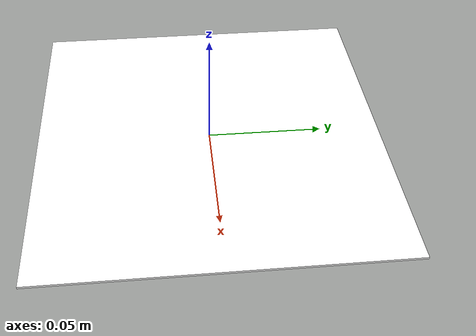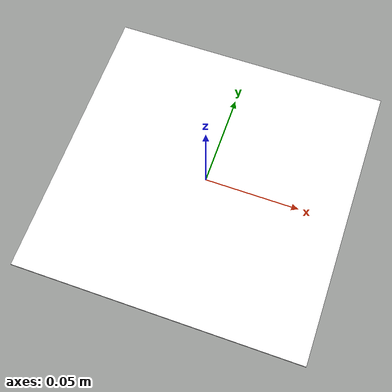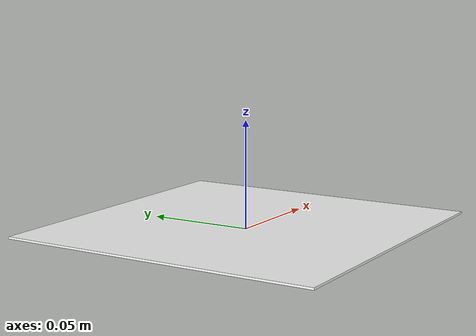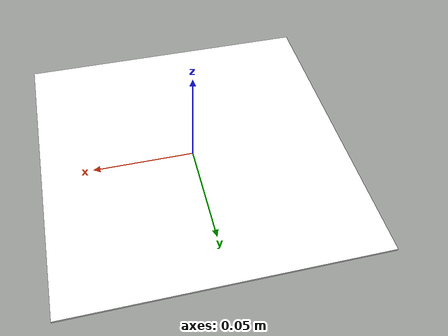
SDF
<?xml version="1.0" encoding="UTF-8"?>
<sdf version="1.9">
  <model name="arucotag">
    <static>true</static>

    <link name="base">
      <pose>0 0 0.002 0 0 0</pose> <visual name="tag_visual">
        <geometry>
          <box>
            <size>0.15 0.15 0.001</size> </box>
        </geometry>
        <material>
          <ambient>1 1 1 1</ambient>
          <diffuse>1 1 1 1</diffuse>
          <pbr>
            <metal>
              <albedo_map>model://marker/ar_tag_0.png</albedo_map>
            </metal>
          </pbr>
        </material>
      </visual>
    </link>
  </model>
</sdf>
